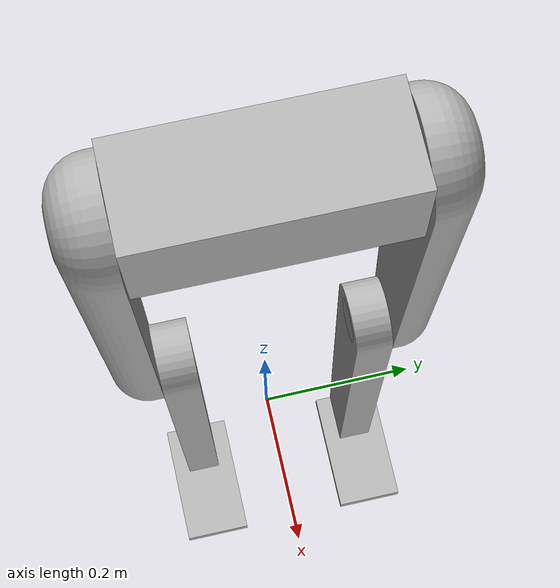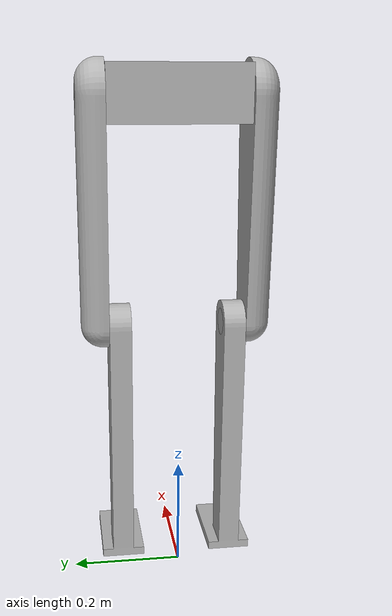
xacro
<?xml version="1.0" ?>
<robot name="minibiped" xmlns:xacro="http://www.ros.org/wiki/xacro">

<xacro:include filename="$(find minibiped_description)/urdf/materials.xacro" />
<xacro:include filename="$(find minibiped_description)/urdf/minibiped.trans" />
<xacro:include filename="$(find minibiped_description)/urdf/minibiped.gazebo" />
<link name="base_link">
  <inertial>
    <origin rpy="0 0 0" xyz="0.05000000000019037 0.0 0.875"/>
    <mass value="2.8581305133003325"/>
    <inertia ixx="0.020769" ixy="0.0" ixz="-0.0" iyy="0.004482" iyz="0.0" izz="0.020769"/>
  </inertial>
  <visual>
    <origin rpy="0 0 0" xyz="0 0 0"/>
    <geometry>
      <mesh filename="package://minibiped_description/meshes/base_link.stl" scale="0.001 0.001 0.001"/>
    </geometry>
    <material name="silver"/>
  </visual>
  <collision>
    <origin rpy="0 0 0" xyz="0 0 0"/>
    <geometry>
      <mesh filename="package://minibiped_description/meshes/base_link.stl" scale="0.001 0.001 0.001"/>
    </geometry>
  </collision>
</link>

<link name="thigh_1_1">
  <inertial>
    <origin rpy="0 0 0" xyz="-9.915679388683429e-14 -0.029550092615413276 -0.1936276569893436"/>
    <mass value="2.950849718614352"/>
    <inertia ixx="0.057929" ixy="-0.0" ixz="0.0" iyy="0.05933" iyz="-0.00106" izz="0.002839"/>
  </inertial>
  <visual>
    <origin rpy="0 0 0" xyz="-0.05 -0.175 -0.875"/>
    <geometry>
      <mesh filename="package://minibiped_description/meshes/thigh_1_1.stl" scale="0.001 0.001 0.001"/>
    </geometry>
    <material name="silver"/>
  </visual>
  <collision>
    <origin rpy="0 0 0" xyz="-0.05 -0.175 -0.875"/>
    <geometry>
      <mesh filename="package://minibiped_description/meshes/thigh_1_1.stl" scale="0.001 0.001 0.001"/>
    </geometry>
  </collision>
</link>

<link name="leg_1_1">
  <inertial>
    <origin rpy="0 0 0" xyz="0.00553971561025169 0.01999989170672259 -0.23982868470758642"/>
    <mass value="2.0835907133546745"/>
    <inertia ixx="0.046816" ixy="0.0" ixz="0.002512" iyy="0.048161" iyz="-0.0" izz="0.002105"/>
  </inertial>
  <visual>
    <origin rpy="0 0 0" xyz="-0.05 -0.084996 -0.465"/>
    <geometry>
      <mesh filename="package://minibiped_description/meshes/leg_1_1.stl" scale="0.001 0.001 0.001"/>
    </geometry>
    <material name="silver"/>
  </visual>
  <collision>
    <origin rpy="0 0 0" xyz="-0.05 -0.084996 -0.465"/>
    <geometry>
      <mesh filename="package://minibiped_description/meshes/leg_1_1.stl" scale="0.001 0.001 0.001"/>
    </geometry>
  </collision>
</link>

<link name="thigh_2_1">
  <inertial>
    <origin rpy="0 0 0" xyz="-9.917761056854602e-14 0.02955009261541322 -0.1936276569893436"/>
    <mass value="2.950849718614351"/>
    <inertia ixx="0.057929" ixy="0.0" ixz="0.0" iyy="0.05933" iyz="0.00106" izz="0.002839"/>
  </inertial>
  <visual>
    <origin rpy="0 0 0" xyz="-0.05 0.175 -0.875"/>
    <geometry>
      <mesh filename="package://minibiped_description/meshes/thigh_2_1.stl" scale="0.001 0.001 0.001"/>
    </geometry>
    <material name="silver"/>
  </visual>
  <collision>
    <origin rpy="0 0 0" xyz="-0.05 0.175 -0.875"/>
    <geometry>
      <mesh filename="package://minibiped_description/meshes/thigh_2_1.stl" scale="0.001 0.001 0.001"/>
    </geometry>
  </collision>
</link>

<link name="leg_2_1">
  <inertial>
    <origin rpy="0 0 0" xyz="0.00553971561025169 -0.01999989170672266 -0.23982868470758628"/>
    <mass value="2.0835907133546745"/>
    <inertia ixx="0.046816" ixy="-0.0" ixz="0.002512" iyy="0.048161" iyz="0.0" izz="0.002105"/>
  </inertial>
  <visual>
    <origin rpy="0 0 0" xyz="-0.05 0.084996 -0.465"/>
    <geometry>
      <mesh filename="package://minibiped_description/meshes/leg_2_1.stl" scale="0.001 0.001 0.001"/>
    </geometry>
    <material name="silver"/>
  </visual>
  <collision>
    <origin rpy="0 0 0" xyz="-0.05 0.084996 -0.465"/>
    <geometry>
      <mesh filename="package://minibiped_description/meshes/leg_2_1.stl" scale="0.001 0.001 0.001"/>
    </geometry>
  </collision>
</link>

<joint name="Thigh_1" type="continuous">
  <origin rpy="0 0 0" xyz="0.05 0.175 0.875"/>
  <parent link="base_link"/>
  <child link="thigh_1_1"/>
  <axis xyz="0.0 1.0 0.0"/>
</joint>

<joint name="leg_1" type="continuous">
  <origin rpy="0 0 0" xyz="0.0 -0.090004 -0.41"/>
  <parent link="thigh_1_1"/>
  <child link="leg_1_1"/>
  <axis xyz="0.0 1.0 0.0"/>
</joint>

<joint name="thigh_2" type="continuous">
  <origin rpy="0 0 0" xyz="0.05 -0.175 0.875"/>
  <parent link="base_link"/>
  <child link="thigh_2_1"/>
  <axis xyz="0.0 1.0 0.0"/>
</joint>

<joint name="leg_2" type="continuous">
  <origin rpy="0 0 0" xyz="0.0 0.090004 -0.41"/>
  <parent link="thigh_2_1"/>
  <child link="leg_2_1"/>
  <axis xyz="0.0 1.0 0.0"/>
</joint>

</robot>

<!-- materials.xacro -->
<robot name="minibiped" xmlns:xacro="http://www.ros.org/wiki/xacro" >

<material name="silver">
  <color rgba="0.700 0.700 0.700 1.000"/>
</material>

</robot>

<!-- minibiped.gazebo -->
<robot name="minibiped" xmlns:xacro="http://www.ros.org/wiki/xacro" >

<xacro:property name="body_color" value="Gazebo/Silver" />

<gazebo>
  <plugin filename="libgazebo_ros_control.so" name="control"/>
</gazebo>
<gazebo reference="base_link">
  <material>${body_color}</material>
  <mu1>0.2</mu1>
  <mu2>0.2</mu2>
  <selfCollide>true</selfCollide>
  <gravity>true</gravity>
</gazebo>

<gazebo reference="thigh_1_1">
  <material>${body_color}</material>
  <mu1>0.2</mu1>
  <mu2>0.2</mu2>
  <selfCollide>true</selfCollide>
</gazebo>

<gazebo reference="leg_1_1">
  <material>${body_color}</material>
  <mu1>0.2</mu1>
  <mu2>0.2</mu2>
  <selfCollide>true</selfCollide>
</gazebo>

<gazebo reference="thigh_2_1">
  <material>${body_color}</material>
  <mu1>0.2</mu1>
  <mu2>0.2</mu2>
  <selfCollide>true</selfCollide>
</gazebo>

<gazebo reference="leg_2_1">
  <material>${body_color}</material>
  <mu1>0.2</mu1>
  <mu2>0.2</mu2>
  <selfCollide>true</selfCollide>
</gazebo>

</robot>
